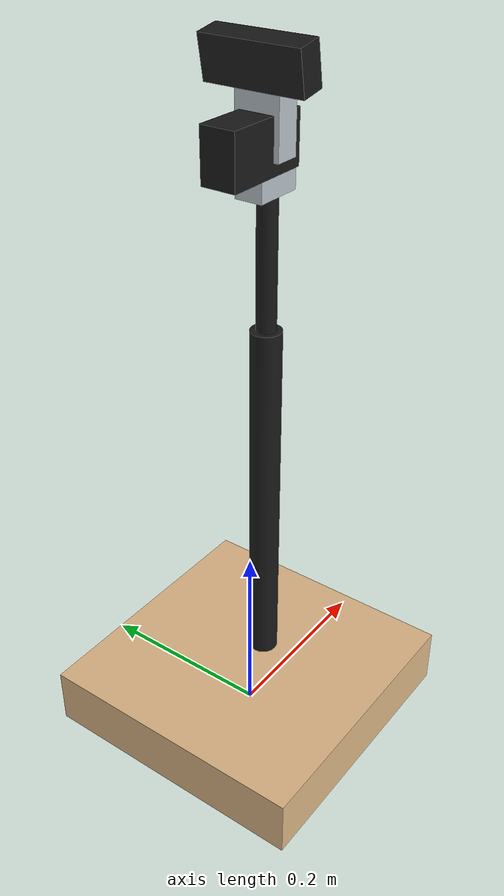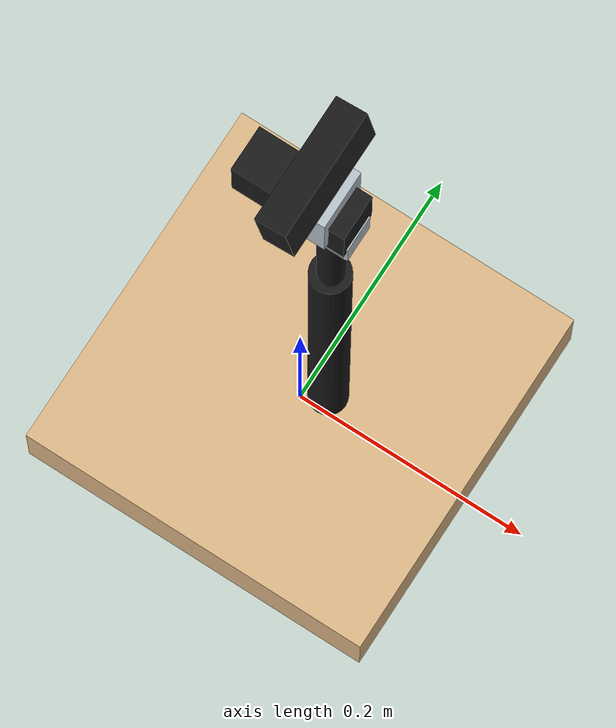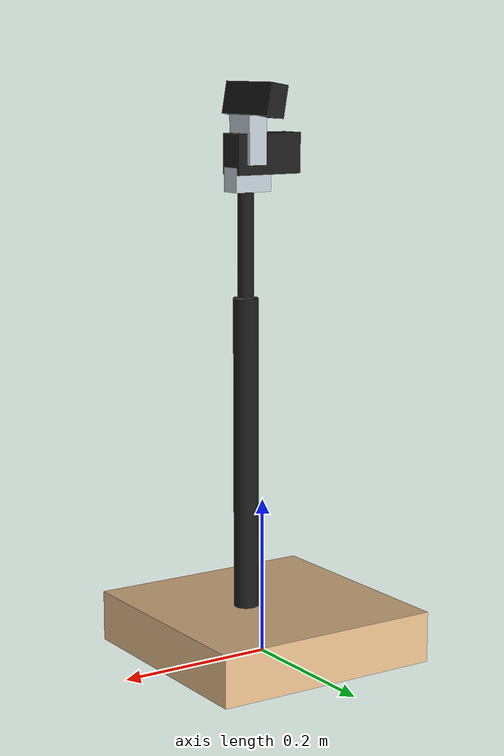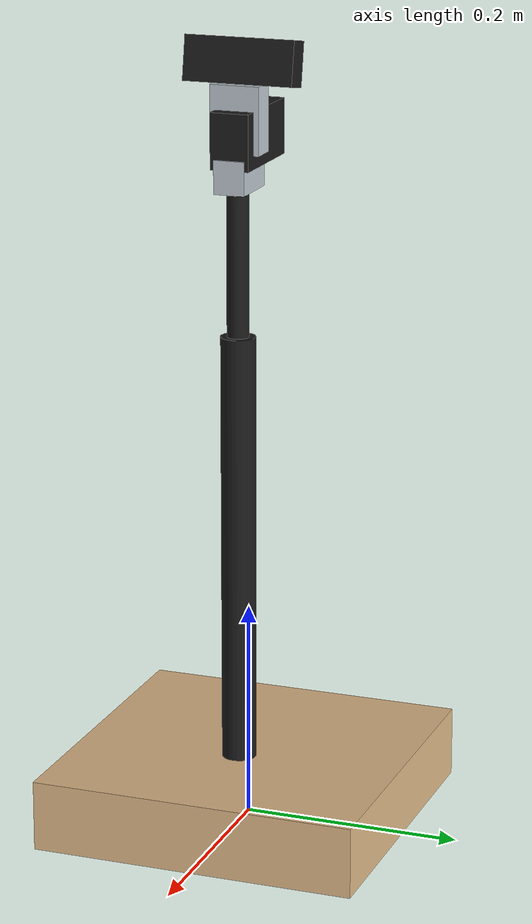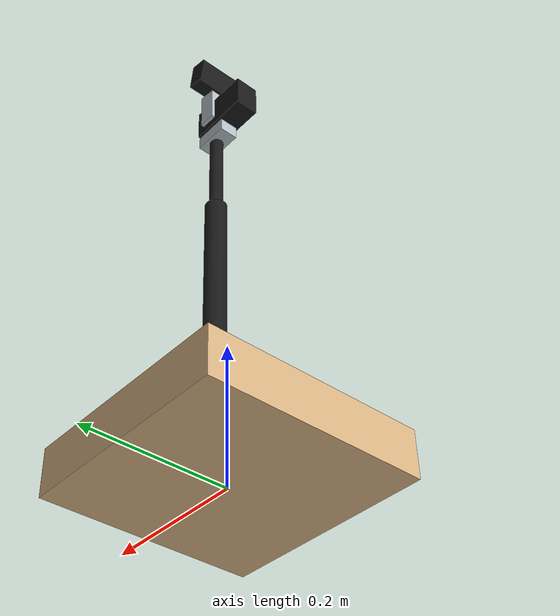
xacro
<?xml version="1.0" encoding="UTF-8"?>
<robot xmlns:xacro="http://www.ros.org/wiki/xacro" name="davros">

    <xacro:arg name="sim_ns" default="/" />

    <xacro:arg name="length" default="0" /> <!-- length messured on the cylinder -->

    <xacro:property name="tofa" value="1" /> <!--Torque factor-->
    <xacro:property name="infa" value="1" /> <!--inertia factor-->
    <xacro:property name="insu" value="0" /> <!--inertia summand-->
    <xacro:property name="d" value="1" /> <!-- damping -->
    <xacro:property name="f" value="1" /> <!-- friction -->

    <material name="black">
        <color rgba="0.1 0.1 0.1 1" />
    </material>

    <material name="silver">
        <color rgba="0.73 0.77 0.8 1" />
    </material>

    <material name="brown">
        <color rgba="0.87 0.72 0.53 1" />
    </material>

    <link name="camera_optical_frame"/>
    <link name="base_link" >
        <inertial>
            <origin xyz="0 0 0" rpy="0 0 0" />
            <mass value="1" />
            <inertia ixx="0.01" ixy="0.01" ixz="0.01" iyy="0.01" iyz="0.01" izz="0.01" />
        </inertial>
        <visual>
            <origin xyz="0 0 0.0325" rpy="0 0 0" />
            <geometry>
                <box size="0.3 0.3 0.065"/>
            </geometry>
            <material name="brown" />
        </visual>
        <collision>
            <origin xyz="0 0 0.0325" rpy="0 0 0" />
            <geometry>
                <box size="0.3 0.3 0.065"/>
            </geometry>
        </collision>
    </link>

    <link name="cylinder_base">
        <inertial>
            <origin xyz="0 0 0" rpy="0 0 0" />
            <mass value="0.1" />
            <inertia ixx="0.01" ixy="0.01" ixz="0.01" iyy="0.01" iyz="0.01" izz="0.01" />
        </inertial>
        <visual>
            <origin xyz="0 0 0.1975" rpy="0 0 0" />
            <geometry>
                <cylinder length="0.395" radius="0.01575"/>
            </geometry>
            <material name="black" />
        </visual>
        <collision>
            <origin xyz="0 0 0.1975" rpy="0 0 0" />
            <geometry>
                <cylinder length="0.395" radius="0.01575"/>
            </geometry>
        </collision>
    </link>

    <link name="cylinder_middle">
       <inertial>
            <origin xyz="0 0 0" rpy="0 0 0" />
            <mass value="0.1" />
            <inertia ixx="0.01" ixy="0.01" ixz="0.01" iyy="0.01" iyz="0.01" izz="0.01" />
        </inertial>
        <visual>
            <origin xyz="0 0 ${$(arg length) / 2}" rpy="0 0 0" />
            <geometry>
                <cylinder length="$(arg length)" radius="0.0125"/>
            </geometry>
            <material name="silver" />
        </visual>
        <collision>
            <origin xyz="0 0 ${$(arg length) / 2}" rpy="0 0 0" />
            <geometry>
                <cylinder length="$(arg length)" radius="0.0125"/>
            </geometry>
        </collision>
    </link>

    <link name="cylinder_top">
        <inertial>
            <origin xyz="0 0 0" rpy="0 0 0" />
            <mass value="0.1" />
            <inertia ixx="0.01" ixy="0.01" ixz="0.01" iyy="0.01" iyz="0.01" izz="0.01" />
        </inertial>
        <visual>
            <origin xyz="0 0 0.09" rpy="0 0 0" />
            <geometry>
                <cylinder length="0.18" radius="0.01"/>
            </geometry>
            <material name="black" />
        </visual>
        <collision>
            <origin xyz="0 0 0.09" rpy="0 0 0" />
            <geometry>
                <cylinder length="0.18" radius="0.01"/>
            </geometry>
        </collision>
    </link>

    <link name="head_pan">
        <inertial>
            <origin xyz="0 0 0" rpy="0 0 0" />
            <mass value="0.1" />
            <inertia ixx="0.01" ixy="0.01" ixz="0.01" iyy="0.01" iyz="0.01" izz="0.01" />
        </inertial>
        <visual>
            <origin xyz="-0.003 0 0.015" rpy="0 0 0" />
            <geometry>
                <box size="0.05 0.028 0.03"/>
            </geometry>
            <material name="silver" />
        </visual>
        <collision>
            <origin xyz="-0.003 0 0.015" rpy="0 0 0" />
            <geometry>
                <box size="0.05 0.028 0.03"/>
            </geometry>
        </collision>
    </link>

    <link name="head_roll">
        <inertial>
            <origin xyz="0 0 0" rpy="0 0 0" />
            <mass value="0.1" />
            <inertia ixx="0.01" ixy="0.01" ixz="0.01" iyy="0.01" iyz="0.01" izz="0.01" />
        </inertial>
        <visual>
            <origin xyz="-0.02 0 0.013" rpy="0 0 0" />
            <geometry>
                <box size="0.09 0.035 0.05"/>
            </geometry>
            <material name="black" />
        </visual>
        <collision>
            <origin xyz="-0.02 0 0.013" rpy="0 0 0" />
            <geometry>
                <box size="0.09 0.035 0.05"/>
            </geometry>
        </collision>
    </link>

    <link name="head_tilt">
        <inertial>
            <origin xyz="0 0 0" rpy="0 0 0" />
            <mass value="0.1" />
            <inertia ixx="0.01" ixy="0.01" ixz="0.01" iyy="0.01" iyz="0.01" izz="0.01" />
        </inertial>
        <visual>
            <origin xyz="0 0 0.03" rpy="0 0 0" />
            <geometry>
                <box size="0.025 0.045 0.06"/>
            </geometry>
            <material name="silver" />
        </visual>
        <collision>
            <origin xyz="0 0 0.03" rpy="0 0 0" />
            <geometry>
                <box size="0.025 0.045 0.06"/>
            </geometry>
        </collision>
    </link>

    <link name="camera">
         <inertial>
            <origin xyz="0 0 0" rpy="0 0 0" />
            <mass value="0.1" />
            <inertia ixx="0.01" ixy="0.01" ixz="0.01" iyy="0.01" iyz="0.01" izz="0.01" />
        </inertial>
       <visual>
            <origin xyz="-0.0125 0 0" rpy="0 0 0" />
            <geometry>
                <box size="0.025 0.1 0.04"/>
            </geometry>
            <material name="black" />
        </visual>
        <collision>
            <origin xyz="0 0 0" rpy="0 0 0" />
            <geometry>
                <box size="0.025 0.1 0.04"/>
            </geometry>
        </collision>
    </link>

    <joint name="base_to_cylinder_base" type="fixed">
        <origin xyz="0.025 0 0.065" rpy="0 0 0" />
        <parent link="base_link" />
        <child link="cylinder_base" />
        <axis xyz="0 0 0" />
    </joint>

    <joint name="cylinder_base_to_middle" type="fixed">
        <origin xyz="0 0 0.375" rpy="0 0 0" />
        <parent link="cylinder_base" />
        <child link="cylinder_middle" />
        <axis xyz="0 0 0" />
    </joint>

    <joint name="cylinder_middle_to_top" type="fixed">
        <origin xyz="0 0 $(arg length)" rpy="0 0 0" />
        <parent link="cylinder_middle" />
        <child link="cylinder_top" />
        <axis xyz="0 0 0" />
    </joint>

    <joint name="RShoulderPitch" type="revolute">
        <origin xyz="0 0 0.15" rpy="0 0 0" />
        <parent link="cylinder_top" />
        <child link="head_pan" />
        <axis xyz="0 0 1" />
        <limit effort="${tofa*2.5}" velocity="5.6548668" lower="-3.141" upper="3.141" />
        <dynamics damping="${d}" friction="${f}" />
    </joint>

    <joint name="LShoulderPitch" type="revolute">
        <origin xyz="-0.004 0 0.033" rpy="0 0 0" />
        <parent link="head_pan" />
        <child link="head_roll" />
        <axis xyz="-1 0 0" />
        <limit effort="${tofa*2.5}" velocity="5.6548668" lower="-1.396263" upper="1.396263" />
        <dynamics damping="${d}" friction="${f}" />
    </joint>

    <joint name="RShoulderRoll" type="revolute">
        <origin xyz="0 0 0" rpy="0 0 0" />
        <parent link="head_roll" />
        <child link="head_tilt" />
        <axis xyz="0 -1 0" />
        <limit effort="${tofa*2.5}" velocity="5.6548668" lower="-0.5235988" upper="2.268928" />
        <dynamics damping="${d}" friction="${f}" />
    </joint>

    <joint name="head_to_camera" type="fixed">
        <origin xyz="0.003 0 0.08" rpy="0 -0.1745329 0" />
        <parent link="head_tilt" />
        <child link="camera" />
        <axis xyz="0 0 0" />
        <dynamics damping="${d}" friction="${f}" />
    </joint>

    <joint name="camera__optical_joint" type="fixed">
      <origin xyz="0 0 0" rpy="${-pi/2} 0 ${-pi/2}" />
      <parent link="camera" />
      <child link="camera_optical_frame" />
    </joint>

    <transmission name="HeadPanTransmission">
        <type>transmission_interface/SimpleTransmission</type>
        <joint name="HeadPan">
            <hardwareInterface>hardware_interface/EffortJointInterface</hardwareInterface>
        </joint>
        <actuator name="HeadPanMotor">
            <hardwareInterface>hardware_interface/EffortJointInterface</hardwareInterface>
            <mechanicalReduction>1</mechanicalReduction>
        </actuator>
    </transmission>
    <transmission name="HeadRollTransmission">
        <type>transmission_interface/SimpleTransmission</type>
        <joint name="HeadRoll">
            <hardwareInterface>hardware_interface/EffortJointInterface</hardwareInterface>
        </joint>
        <actuator name="HeadRollMotor">
            <hardwareInterface>hardware_interface/EffortJointInterface</hardwareInterface>
            <mechanicalReduction>1</mechanicalReduction>
        </actuator>
    </transmission>
    <transmission name="HeadTiltTransmission">
        <type>transmission_interface/SimpleTransmission</type>
        <joint name="HeadTilt">
            <hardwareInterface>hardware_interface/EffortJointInterface</hardwareInterface>
        </joint>
        <actuator name="HeadTiltMotor">
            <hardwareInterface>hardware_interface/EffortJointInterface</hardwareInterface>
            <mechanicalReduction>1</mechanicalReduction>
        </actuator>
    </transmission>

  <!-- joint controller -->
    <gazebo>
        <plugin filename="libgazebo_ros_control.so" name="gazebo_ros_control">
            <robotNamespace>$(arg sim_ns)</robotNamespace>
        </plugin>
    </gazebo>

  <!-- camera sensor -->
  <gazebo reference="camera">
        <sensor name='camera' type='camera'>
          <pose>-0.050000 -0.010000 0.000000 -1.5708 0.000000 -3.141592</pose>
          <camera name='__default__'>
            <horizontal_fov>1.012300</horizontal_fov>
            <image>
              <width>800</width>
              <height>600</height>
            </image>
            <clip>
              <near>0.001000</near>
              <far>100.000000</far>
            </clip>
          </camera>
          <always_on>1</always_on>
          <update_rate>30.000000</update_rate>
          <visualize>1</visualize>
          <plugin name="camera_controller" filename="libgazebo_ros_camera.so">
            <alwaysOn>true</alwaysOn>
            <updateRate>30</updateRate>
            <cameraName>camera</cameraName>
            <imageTopicName>image_raw</imageTopicName>
            <cameraInfoTopicName>camera_info</cameraInfoTopicName>
            <frameName>camera</frameName>
            <hackBaseline>0.07</hackBaseline>
            <distortionK1>0.0</distortionK1>
            <distortionK2>0.0</distortionK2>
            <distortionK3>0.0</distortionK3>
            <distortionT1>0.0</distortionT1>
            <distortionT2>0.0</distortionT2>
          </plugin>
      </sensor>
  </gazebo>

   <!-- fake controller that allows us to move the robot and to get its oposition -->
   <!-- rostopic pub /minibot/cmd_vel geometry_msgs/Twist "{ linear: [ 0.1, 0, 0], angular: [0.2, 0, 0.1] }" -->
   <gazebo>
    <plugin name="object_controller" filename="libgazebo_ros_planar_move.so">
      <robotNamespace>$(arg sim_ns)</robotNamespace>

      <commandTopic>cmd_vel</commandTopic>
      <odometryTopic>odom</odometryTopic>
      <odometryFrame>odom</odometryFrame>
      <odometryRate>100.0</odometryRate>
      <robotBaseFrame>base_link</robotBaseFrame>
    </plugin>
  </gazebo>

</robot>
